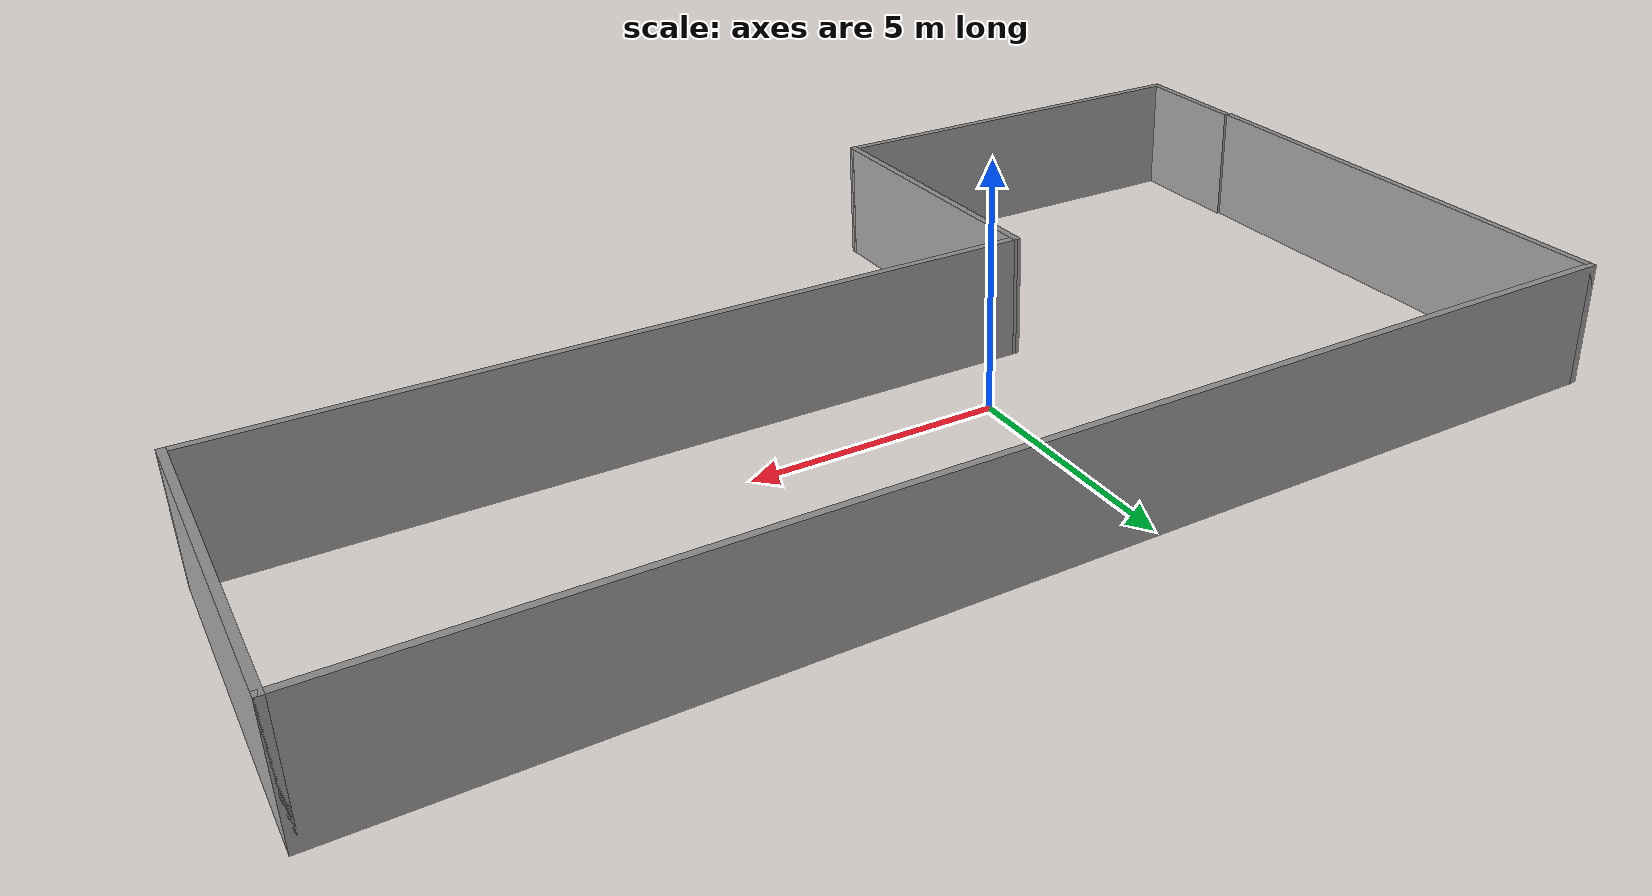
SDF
<?xml version='1.0'?>
<sdf version='1.7'>
  <model name='simple.world'>
    <pose>1.83461 -1.4754 0 0 -0 0</pose>
    <link name='Wall_13'>
      <collision name='Wall_13_Collision'>
        <geometry>
          <box>
            <size>10.5 0.15 2.5</size>
          </box>
        </geometry>
        <pose>0 0 1.25 0 -0 0</pose>
      </collision>
      <visual name='Wall_13_Visual'>
        <pose>0 0 1.25 0 -0 0</pose>
        <geometry>
          <box>
            <size>10.5 0.15 2.5</size>
          </box>
        </geometry>
        <material>
          <script>
            <uri>file://media/materials/scripts/gazebo.material</uri>
            <name>Gazebo/Grey</name>
          </script>
          <ambient>1 1 1 1</ambient>
        </material>
        <meta>
          <layer>0</layer>
        </meta>
      </visual>
      <pose>-12.05 1.38375 0 0 -0 1.5708</pose>
    </link>
    <link name='Wall_14'>
      <collision name='Wall_14_Collision'>
        <geometry>
          <box>
            <size>24.25 0.15 2.5</size>
          </box>
        </geometry>
        <pose>0 0 1.25 0 -0 0</pose>
      </collision>
      <visual name='Wall_14_Visual'>
        <pose>0 0 1.25 0 -0 0</pose>
        <geometry>
          <box>
            <size>24.25 0.15 2.5</size>
          </box>
        </geometry>
        <material>
          <script>
            <uri>file://media/materials/scripts/gazebo.material</uri>
            <name>Gazebo/Grey</name>
          </script>
          <ambient>1 1 1 1</ambient>
        </material>
        <meta>
          <layer>0</layer>
        </meta>
      </visual>
      <pose>0 6.55875 0 0 -0 0</pose>
    </link>
    <link name='Wall_15'>
      <collision name='Wall_15_Collision'>
        <geometry>
          <box>
            <size>7 0.15 2.5</size>
          </box>
        </geometry>
        <pose>0 0 1.25 0 -0 0</pose>
      </collision>
      <visual name='Wall_15_Visual'>
        <pose>0 0 1.25 0 -0 0</pose>
        <geometry>
          <box>
            <size>7 0.15 2.5</size>
          </box>
        </geometry>
        <material>
          <script>
            <uri>file://media/materials/scripts/gazebo.material</uri>
            <name>Gazebo/Grey</name>
          </script>
          <ambient>1 1 1 1</ambient>
        </material>
        <meta>
          <layer>0</layer>
        </meta>
      </visual>
      <pose>12.05 3.13375 0 0 -0 -1.5708</pose>
    </link>
    <link name='Wall_16'>
      <collision name='Wall_16_Collision'>
        <geometry>
          <box>
            <size>15.75 0.15 2.5</size>
          </box>
        </geometry>
        <pose>0 0 1.25 0 -0 0</pose>
      </collision>
      <visual name='Wall_16_Visual'>
        <pose>0 0 1.25 0 -0 0</pose>
        <geometry>
          <box>
            <size>15.75 0.15 2.5</size>
          </box>
        </geometry>
        <material>
          <script>
            <uri>file://media/materials/scripts/gazebo.material</uri>
            <name>Gazebo/Grey</name>
          </script>
          <ambient>1 1 1 1</ambient>
        </material>
        <meta>
          <layer>0</layer>
        </meta>
      </visual>
      <pose>4.25 -0.291251 0 0 -0 3.14159</pose>
    </link>
    <link name='Wall_17'>
      <collision name='Wall_17_Collision'>
        <geometry>
          <box>
            <size>6.37334 0.15 2.5</size>
          </box>
        </geometry>
        <pose>0 0 1.25 0 -0 0</pose>
      </collision>
      <visual name='Wall_17_Visual'>
        <pose>0 0 1.25 0 -0 0</pose>
        <geometry>
          <box>
            <size>6.37334 0.15 2.5</size>
          </box>
        </geometry>
        <material>
          <script>
            <uri>file://media/materials/scripts/gazebo.material</uri>
            <name>Gazebo/Grey</name>
          </script>
          <ambient>1 1 1 1</ambient>
        </material>
        <meta>
          <layer>0</layer>
        </meta>
      </visual>
      <pose>-3.47173 -3.40193 0 0 -0 -1.54564</pose>
    </link>
    <link name='Wall_18'>
      <collision name='Wall_18_Collision'>
        <geometry>
          <box>
            <size>8.71846 0.15 2.5</size>
          </box>
        </geometry>
        <pose>0 0 1.25 0 -0 0</pose>
      </collision>
      <visual name='Wall_18_Visual'>
        <pose>0 0 1.25 0 -0 0</pose>
        <geometry>
          <box>
            <size>8.71846 0.15 2.5</size>
          </box>
        </geometry>
        <material>
          <script>
            <uri>file://media/materials/scripts/gazebo.material</uri>
            <name>Gazebo/Grey</name>
          </script>
          <ambient>1 1 1 1</ambient>
        </material>
        <meta>
          <layer>0</layer>
        </meta>
      </visual>
      <pose>-7.67762 -6.53548 0 0 -0 -3.13625</pose>
    </link>
    <link name='Wall_19'>
      <collision name='Wall_19_Collision'>
        <geometry>
          <box>
            <size>2.75 0.15 2.5</size>
          </box>
        </geometry>
        <pose>0 0 1.25 0 -0 0</pose>
      </collision>
      <visual name='Wall_19_Visual'>
        <pose>0 0 1.25 0 -0 0</pose>
        <geometry>
          <box>
            <size>2.75 0.15 2.5</size>
          </box>
        </geometry>
        <material>
          <script>
            <uri>file://media/materials/scripts/gazebo.material</uri>
            <name>Gazebo/Grey</name>
          </script>
          <ambient>1 1 1 1</ambient>
        </material>
        <meta>
          <layer>0</layer>
        </meta>
      </visual>
      <pose>-12.0022 -5.25835 0 0 -0 1.5708</pose>
    </link>
    <static>1</static>
  </model>
</sdf>
